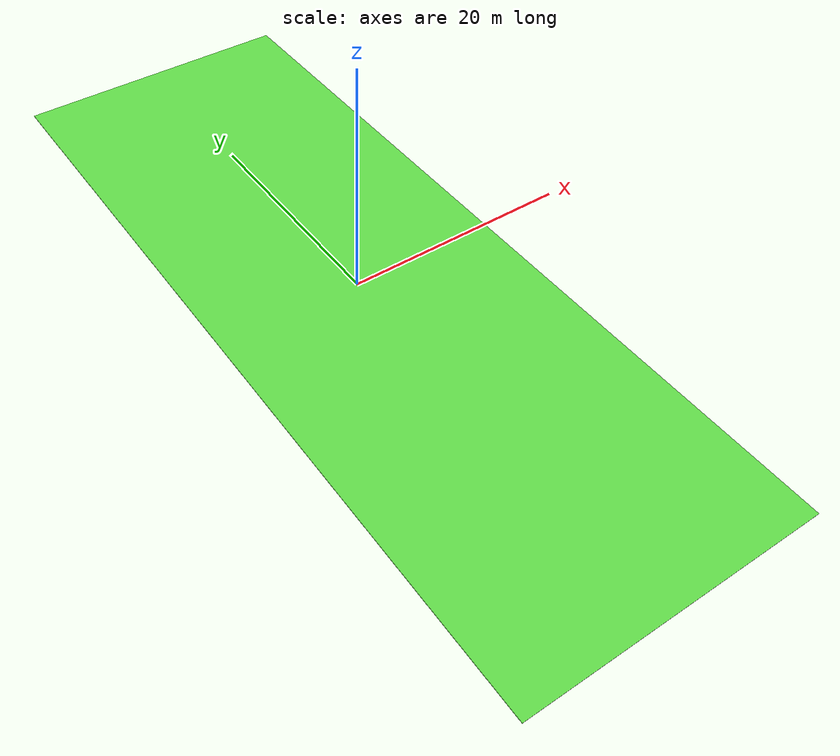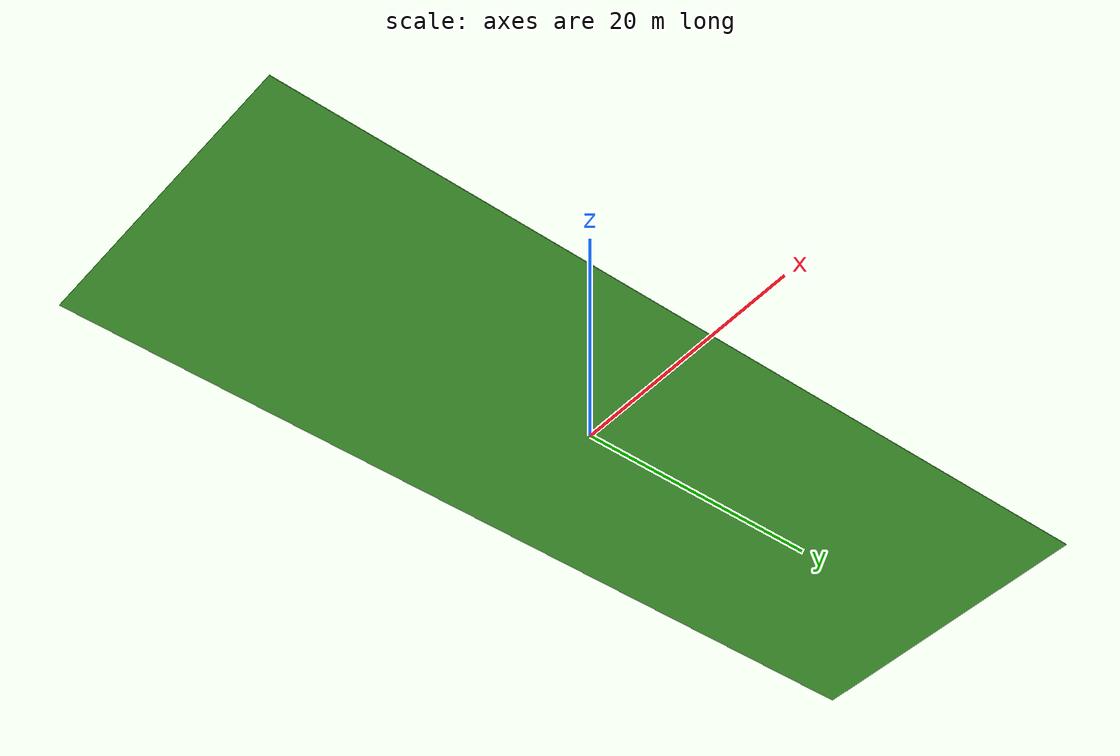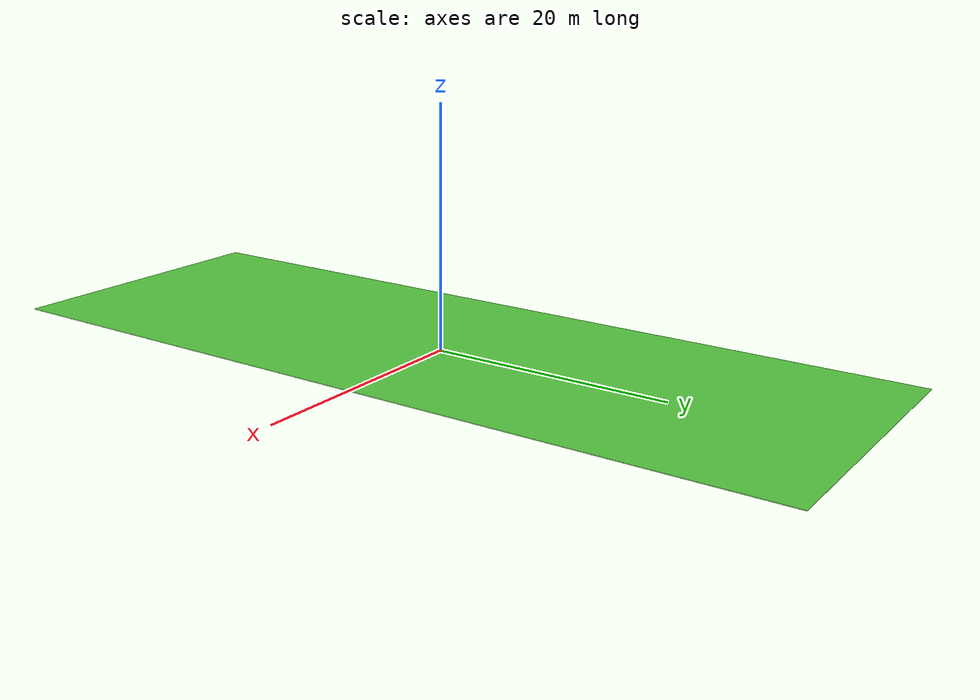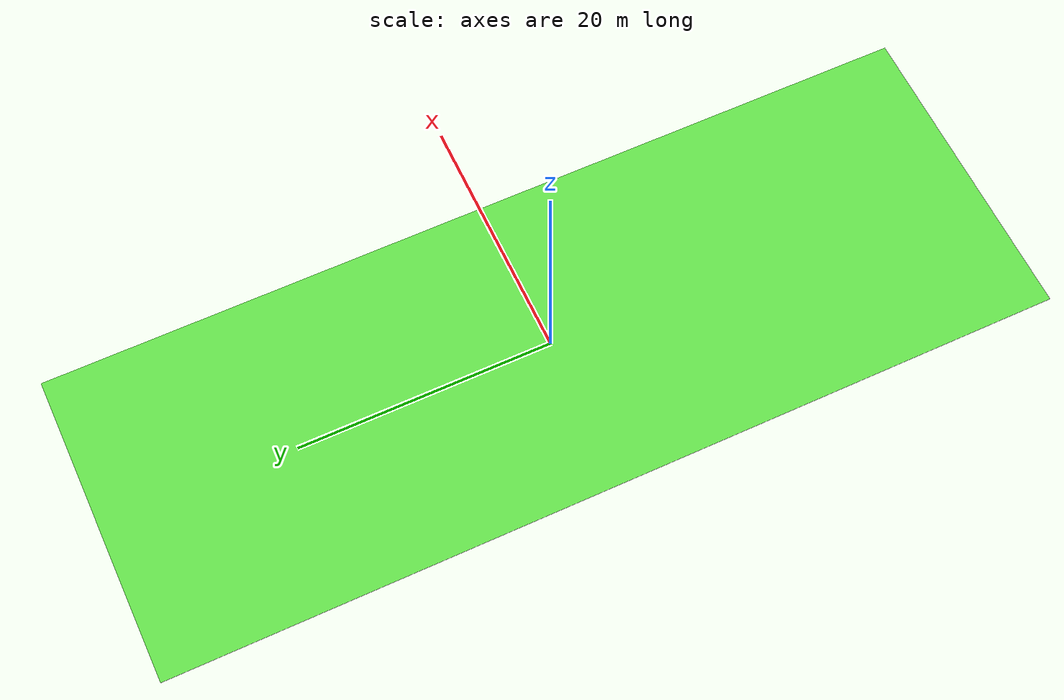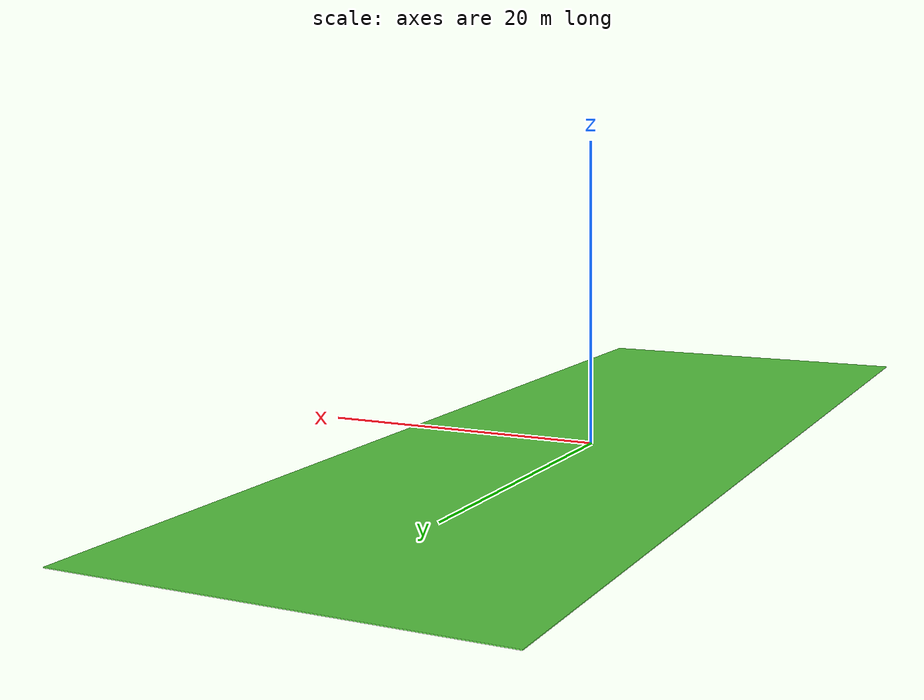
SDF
<?xml version="1.0"?>
<sdf version="1.7">

  <model name="pitch">
    <link name="pitch_link">
      <inertial>
        <mass>200</mass>
        <inertia>
          <ixx>0.79</ixx>
          <ixy>0</ixy>
          <ixz>0</ixz>
          <iyy>0.53</iyy>
          <iyz>0</iyz>
          <izz>1.2</izz>
        </inertia>
      </inertial>
    <visual name="bottom">
        <pose>0.0 0.0 0.445 0 0 0</pose>
        <geometry>
          <box>
            <size>25 70 .05</size>
          </box>
        </geometry>
        <material>
          <diffuse>0.4 0.9 0.3 1.0</diffuse>
        </material>
      </visual>
      <collision name="bottom">
        <pose>0.0 0.0 0.445 0 0 0</pose>
        <geometry>
          <box>
            <size>25 70 .05</size>
          </box>
        </geometry>
        <drake:proximity_properties>
          <drake:compliant_hydroelastic/>
          <drake:hydroelastic_modulus>1.0e6</drake:hydroelastic_modulus>
        </drake:proximity_properties>
      </collision>
    </link>
    <frame name="pitch_center">
      <pose relative_to="pitch_link">0 0 0.47 0 0 0</pose>
    </frame>
  </model>
</sdf>
